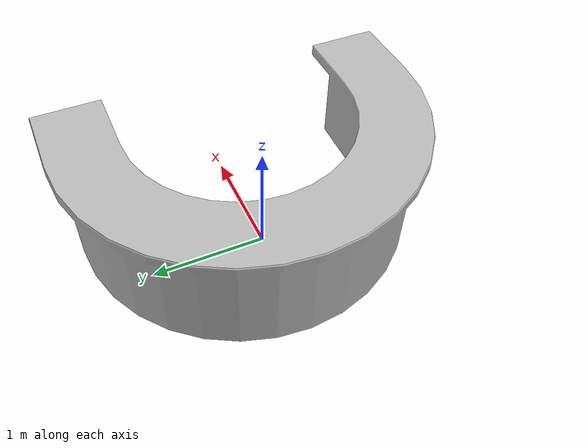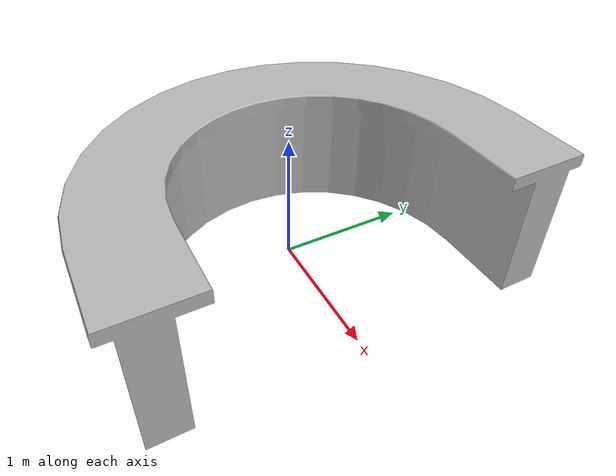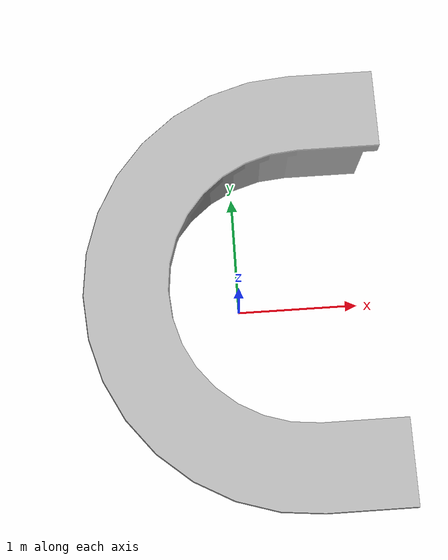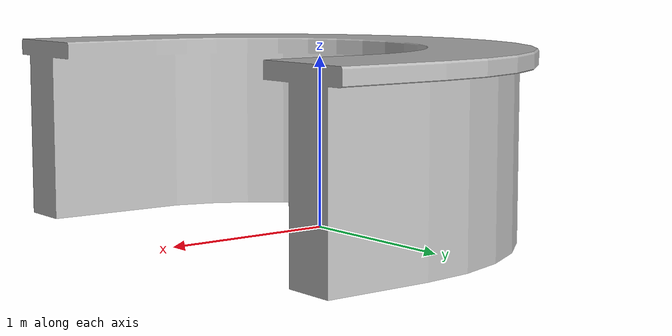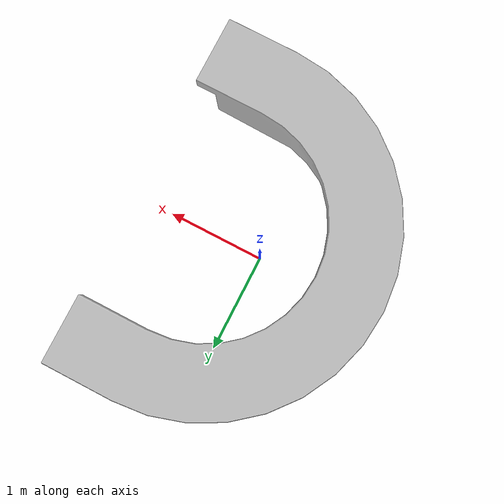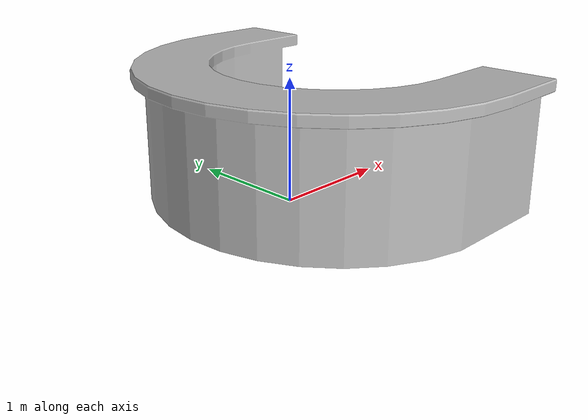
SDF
<?xml version="1.0" ?>
<sdf version="1.6">
  <model name="aws_robomaker_retail_InfoDesk_01">
    <link name="link">
      <inertial>
        <mass>50</mass>
        <inertia>
          <ixx>47.838601</ixx>
          <ixy>0</ixy>
          <ixz>0</ixz>
          <iyy>25.37052</iyy>
          <iyz>0</iyz>
          <izz>63.5798181</izz>
        </inertia>
      </inertial>
      <collision name="collision">
        <geometry>
          <mesh>
            <uri>model://aws_robomaker_retail_InfoDesk_01/meshes/aws_InfoDesk_01_collision.DAE</uri>
            <scale>1 1 1</scale>
          </mesh>
        </geometry>
      </collision>
      <visual name="visual">
	    <geometry>
          <mesh>
            <uri>model://aws_robomaker_retail_InfoDesk_01/meshes/aws_InfoDesk_01_visual.DAE</uri>
          </mesh>
        </geometry>
        <meta>
          <layer>1</layer>
        </meta>
      </visual>
    </link>
		<static>1</static>
  </model>
</sdf>
